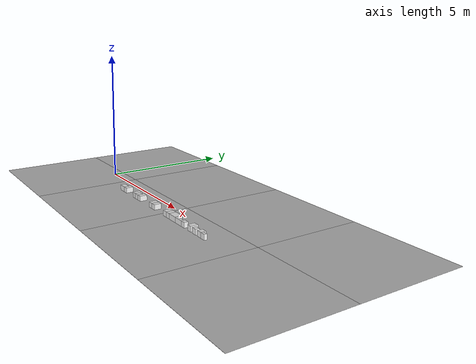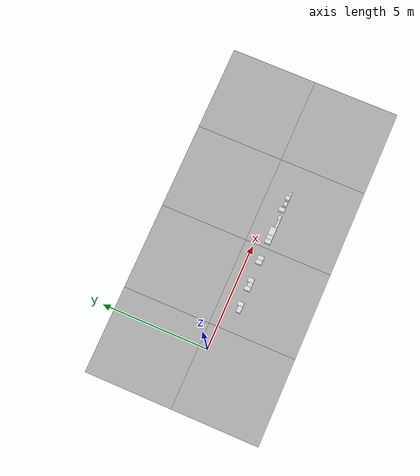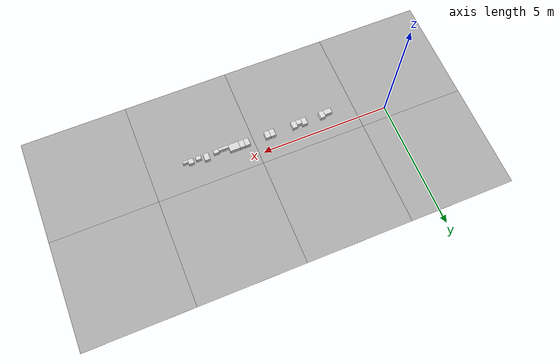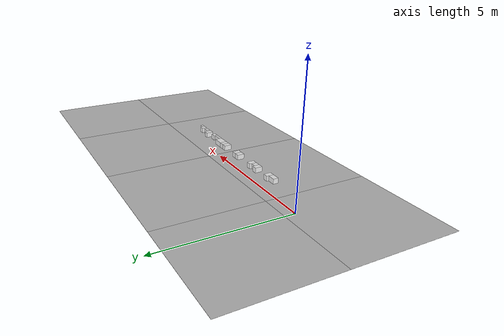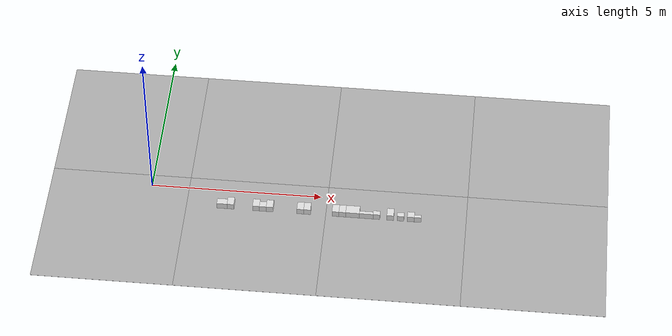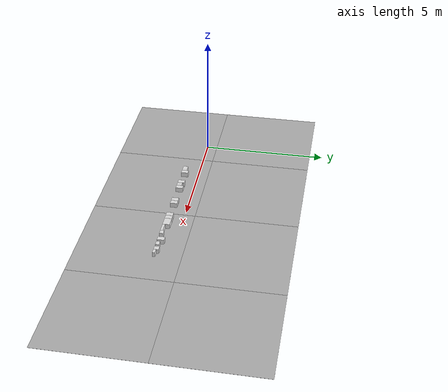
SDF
<sdf version='1.6'><world name='default'>
    <light name='sun_light' type='directional'>
      <pose frame=''>0 0 10 0 -0 0</pose>
      <diffuse>0.5 0.5 0.5 1</diffuse>
      <specular>0.1 0.1 0.1 1</specular>
      <direction>0.1 0.1 -0.9</direction>
      <attenuation>
        <range>20</range>
        <constant>0.5</constant>
        <linear>0.01</linear>
        <quadratic>0.001</quadratic>
      </attenuation>
      <cast_shadows>1</cast_shadows>
    </light>

    <model name='Tile/0-0'>
      <static>1</static>
      <link name='link'>
        <collision name='collision'>
          <geometry>
            <plane>
              <normal>0 0 1</normal>
              <size>4.096 4.096</size>
            </plane>
          </geometry>
          <surface>
            <friction>
              <ode>
                <mu>100</mu>
                <mu2>50</mu2>
              </ode>
              <torsional>
                <ode/>
              </torsional>
            </friction>
            <contact>
              <ode/>
            </contact>
            <bounce/>
          </surface>
          <max_contacts>10</max_contacts>
        </collision>
        <visual name='visual'>
          <cast_shadows>0</cast_shadows>
          <geometry>
            <plane>
              <normal>0 0 1</normal>
              <size>4.096 4.096</size>
            </plane>
          </geometry>
          <material>
            <script>
              <uri>file://materials/scripts</uri>
              <uri>file://materials/textures</uri>
              <name>Tile/aa44efc093d15b0d016b671cb8dad8b9b5925cd42bc6b331ef31decf4ba6863e</name>
            </script>
          </material>
        </visual>
        <self_collide>0</self_collide>
        <enable_wind>0</enable_wind>
        <kinematic>0</kinematic>
      </link>
      <pose frame=''>-0.952 -1.6520000000000001 0 0 -0 0</pose>
    </model>

    <model name='Tile/0-1'>
      <static>1</static>
      <link name='link'>
        <collision name='collision'>
          <geometry>
            <plane>
              <normal>0 0 1</normal>
              <size>4.096 4.096</size>
            </plane>
          </geometry>
          <surface>
            <friction>
              <ode>
                <mu>100</mu>
                <mu2>50</mu2>
              </ode>
              <torsional>
                <ode/>
              </torsional>
            </friction>
            <contact>
              <ode/>
            </contact>
            <bounce/>
          </surface>
          <max_contacts>10</max_contacts>
        </collision>
        <visual name='visual'>
          <cast_shadows>0</cast_shadows>
          <geometry>
            <plane>
              <normal>0 0 1</normal>
              <size>4.096 4.096</size>
            </plane>
          </geometry>
          <material>
            <script>
              <uri>file://materials/scripts</uri>
              <uri>file://materials/textures</uri>
              <name>Tile/6681b896b1587d54cb69aadeb5fb7247b4d6d500490292053e67105ac88ca889</name>
            </script>
          </material>
        </visual>
        <self_collide>0</self_collide>
        <enable_wind>0</enable_wind>
        <kinematic>0</kinematic>
      </link>
      <pose frame=''>-0.952 2.444 0 0 -0 0</pose>
    </model>

    <model name='Tile/1-0'>
      <static>1</static>
      <link name='link'>
        <collision name='collision'>
          <geometry>
            <plane>
              <normal>0 0 1</normal>
              <size>4.096 4.096</size>
            </plane>
          </geometry>
          <surface>
            <friction>
              <ode>
                <mu>100</mu>
                <mu2>50</mu2>
              </ode>
              <torsional>
                <ode/>
              </torsional>
            </friction>
            <contact>
              <ode/>
            </contact>
            <bounce/>
          </surface>
          <max_contacts>10</max_contacts>
        </collision>
        <visual name='visual'>
          <cast_shadows>0</cast_shadows>
          <geometry>
            <plane>
              <normal>0 0 1</normal>
              <size>4.096 4.096</size>
            </plane>
          </geometry>
          <material>
            <script>
              <uri>file://materials/scripts</uri>
              <uri>file://materials/textures</uri>
              <name>Tile/b68d0ecf6b408e0fc433244201ac7bd13b8bb7c908afa160fe7f06998fc3795e</name>
            </script>
          </material>
        </visual>
        <self_collide>0</self_collide>
        <enable_wind>0</enable_wind>
        <kinematic>0</kinematic>
      </link>
      <pose frame=''>3.144 -1.6520000000000001 0 0 -0 0</pose>
    </model>

    <model name='Tile/1-1'>
      <static>1</static>
      <link name='link'>
        <collision name='collision'>
          <geometry>
            <plane>
              <normal>0 0 1</normal>
              <size>4.096 4.096</size>
            </plane>
          </geometry>
          <surface>
            <friction>
              <ode>
                <mu>100</mu>
                <mu2>50</mu2>
              </ode>
              <torsional>
                <ode/>
              </torsional>
            </friction>
            <contact>
              <ode/>
            </contact>
            <bounce/>
          </surface>
          <max_contacts>10</max_contacts>
        </collision>
        <visual name='visual'>
          <cast_shadows>0</cast_shadows>
          <geometry>
            <plane>
              <normal>0 0 1</normal>
              <size>4.096 4.096</size>
            </plane>
          </geometry>
          <material>
            <script>
              <uri>file://materials/scripts</uri>
              <uri>file://materials/textures</uri>
              <name>Tile/13957a6de1f2afce18d7f1f64dacc2f21295e26ccf498256b0e1a51002cd5706</name>
            </script>
          </material>
        </visual>
        <self_collide>0</self_collide>
        <enable_wind>0</enable_wind>
        <kinematic>0</kinematic>
      </link>
      <pose frame=''>3.144 2.444 0 0 -0 0</pose>
    </model>

    <model name='Tile/2-0'>
      <static>1</static>
      <link name='link'>
        <collision name='collision'>
          <geometry>
            <plane>
              <normal>0 0 1</normal>
              <size>4.096 4.096</size>
            </plane>
          </geometry>
          <surface>
            <friction>
              <ode>
                <mu>100</mu>
                <mu2>50</mu2>
              </ode>
              <torsional>
                <ode/>
              </torsional>
            </friction>
            <contact>
              <ode/>
            </contact>
            <bounce/>
          </surface>
          <max_contacts>10</max_contacts>
        </collision>
        <visual name='visual'>
          <cast_shadows>0</cast_shadows>
          <geometry>
            <plane>
              <normal>0 0 1</normal>
              <size>4.096 4.096</size>
            </plane>
          </geometry>
          <material>
            <script>
              <uri>file://materials/scripts</uri>
              <uri>file://materials/textures</uri>
              <name>Tile/0a1ce1d769c28da96ebf4f035fce8fc54b9aefae1875079e0e4ee575628a1ae4</name>
            </script>
          </material>
        </visual>
        <self_collide>0</self_collide>
        <enable_wind>0</enable_wind>
        <kinematic>0</kinematic>
      </link>
      <pose frame=''>7.24 -1.6520000000000001 0 0 -0 0</pose>
    </model>

    <model name='Tile/2-1'>
      <static>1</static>
      <link name='link'>
        <collision name='collision'>
          <geometry>
            <plane>
              <normal>0 0 1</normal>
              <size>4.096 4.096</size>
            </plane>
          </geometry>
          <surface>
            <friction>
              <ode>
                <mu>100</mu>
                <mu2>50</mu2>
              </ode>
              <torsional>
                <ode/>
              </torsional>
            </friction>
            <contact>
              <ode/>
            </contact>
            <bounce/>
          </surface>
          <max_contacts>10</max_contacts>
        </collision>
        <visual name='visual'>
          <cast_shadows>0</cast_shadows>
          <geometry>
            <plane>
              <normal>0 0 1</normal>
              <size>4.096 4.096</size>
            </plane>
          </geometry>
          <material>
            <script>
              <uri>file://materials/scripts</uri>
              <uri>file://materials/textures</uri>
              <name>Tile/13957a6de1f2afce18d7f1f64dacc2f21295e26ccf498256b0e1a51002cd5706</name>
            </script>
          </material>
        </visual>
        <self_collide>0</self_collide>
        <enable_wind>0</enable_wind>
        <kinematic>0</kinematic>
      </link>
      <pose frame=''>7.24 2.444 0 0 -0 0</pose>
    </model>

    <model name='Tile/3-0'>
      <static>1</static>
      <link name='link'>
        <collision name='collision'>
          <geometry>
            <plane>
              <normal>0 0 1</normal>
              <size>4.096 4.096</size>
            </plane>
          </geometry>
          <surface>
            <friction>
              <ode>
                <mu>100</mu>
                <mu2>50</mu2>
              </ode>
              <torsional>
                <ode/>
              </torsional>
            </friction>
            <contact>
              <ode/>
            </contact>
            <bounce/>
          </surface>
          <max_contacts>10</max_contacts>
        </collision>
        <visual name='visual'>
          <cast_shadows>0</cast_shadows>
          <geometry>
            <plane>
              <normal>0 0 1</normal>
              <size>4.096 4.096</size>
            </plane>
          </geometry>
          <material>
            <script>
              <uri>file://materials/scripts</uri>
              <uri>file://materials/textures</uri>
              <name>Tile/6f6040bef4d42f9d15bfe1cac2798321f0b066d3c6650b2501bf7cefd4cde4eb</name>
            </script>
          </material>
        </visual>
        <self_collide>0</self_collide>
        <enable_wind>0</enable_wind>
        <kinematic>0</kinematic>
      </link>
      <pose frame=''>11.336 -1.6520000000000001 0 0 -0 0</pose>
    </model>

    <model name='Tile/3-1'>
      <static>1</static>
      <link name='link'>
        <collision name='collision'>
          <geometry>
            <plane>
              <normal>0 0 1</normal>
              <size>4.096 4.096</size>
            </plane>
          </geometry>
          <surface>
            <friction>
              <ode>
                <mu>100</mu>
                <mu2>50</mu2>
              </ode>
              <torsional>
                <ode/>
              </torsional>
            </friction>
            <contact>
              <ode/>
            </contact>
            <bounce/>
          </surface>
          <max_contacts>10</max_contacts>
        </collision>
        <visual name='visual'>
          <cast_shadows>0</cast_shadows>
          <geometry>
            <plane>
              <normal>0 0 1</normal>
              <size>4.096 4.096</size>
            </plane>
          </geometry>
          <material>
            <script>
              <uri>file://materials/scripts</uri>
              <uri>file://materials/textures</uri>
              <name>Tile/645e4de11e43fb4a2eacb9a8c7d717bcfff32a13dfbd190f93559dca6052abb8</name>
            </script>
          </material>
        </visual>
        <self_collide>0</self_collide>
        <enable_wind>0</enable_wind>
        <kinematic>0</kinematic>
      </link>
      <pose frame=''>11.336 2.444 0 0 -0 0</pose>
    </model>

    <model name='Obstacle/-5/0'>
      <pose frame=''>2.15 -0.6 0.1 0 0 -0.0</pose>
      <link name='link'>
        <inertial>
          <mass>10</mass>
          <inertia>
            <ixx>0.166667</ixx>
            <ixy>0</ixy>
            <ixz>0</ixz>
            <iyy>0.166667</iyy>
            <iyz>0</iyz>
            <izz>0.166667</izz>
          </inertia>
        </inertial>
        <collision name='collision'>
          <geometry>
            <box>
              <size>0.3 0.2 0.2</size>
            </box>
          </geometry>
          <max_contacts>10</max_contacts>
          <surface>
            <contact>
              <ode/>
            </contact>
            <bounce/>
            <friction>
              <torsional>
                <ode/>
              </torsional>
              <ode/>
            </friction>
          </surface>
        </collision>
        <visual name='visual'>
          <geometry>
            <box>
              <size>0.3 0.2 0.2</size>
            </box>
          </geometry>
          <material>
            <script>
              <name>Gazebo/White</name>
              <uri>file://media/materials/scripts/gazebo.material</uri>
            </script>
          </material>
        </visual>
        <self_collide>0</self_collide>
        <enable_wind>0</enable_wind>
        <kinematic>0</kinematic>
      </link>
    </model>

    <model name='Obstacle/-9/0'>
      <pose frame=''>2.4 -0.5599999999999999 0.1 0 0 -0.0</pose>
      <link name='link'>
        <inertial>
          <mass>10</mass>
          <inertia>
            <ixx>0.166667</ixx>
            <ixy>0</ixy>
            <ixz>0</ixz>
            <iyy>0.166667</iyy>
            <iyz>0</iyz>
            <izz>0.166667</izz>
          </inertia>
        </inertial>
        <collision name='collision'>
          <geometry>
            <box>
              <size>0.2 0.28 0.2</size>
            </box>
          </geometry>
          <max_contacts>10</max_contacts>
          <surface>
            <contact>
              <ode/>
            </contact>
            <bounce/>
            <friction>
              <torsional>
                <ode/>
              </torsional>
              <ode/>
            </friction>
          </surface>
        </collision>
        <visual name='visual'>
          <geometry>
            <box>
              <size>0.2 0.28 0.2</size>
            </box>
          </geometry>
          <material>
            <script>
              <name>Gazebo/White</name>
              <uri>file://media/materials/scripts/gazebo.material</uri>
            </script>
          </material>
        </visual>
        <self_collide>0</self_collide>
        <enable_wind>0</enable_wind>
        <kinematic>0</kinematic>
      </link>
    </model>

    <model name='Obstacle/-16/0'>
      <pose frame=''>3.15 -0.5599999999999999 0.1 0 0 -0.0</pose>
      <link name='link'>
        <inertial>
          <mass>10</mass>
          <inertia>
            <ixx>0.166667</ixx>
            <ixy>0</ixy>
            <ixz>0</ixz>
            <iyy>0.166667</iyy>
            <iyz>0</iyz>
            <izz>0.166667</izz>
          </inertia>
        </inertial>
        <collision name='collision'>
          <geometry>
            <box>
              <size>0.2 0.28 0.2</size>
            </box>
          </geometry>
          <max_contacts>10</max_contacts>
          <surface>
            <contact>
              <ode/>
            </contact>
            <bounce/>
            <friction>
              <torsional>
                <ode/>
              </torsional>
              <ode/>
            </friction>
          </surface>
        </collision>
        <visual name='visual'>
          <geometry>
            <box>
              <size>0.2 0.28 0.2</size>
            </box>
          </geometry>
          <material>
            <script>
              <name>Gazebo/White</name>
              <uri>file://media/materials/scripts/gazebo.material</uri>
            </script>
          </material>
        </visual>
        <self_collide>0</self_collide>
        <enable_wind>0</enable_wind>
        <kinematic>0</kinematic>
      </link>
    </model>

    <model name='Obstacle/-20/0'>
      <pose frame=''>3.35 -0.6 0.1 0 0 -0.0</pose>
      <link name='link'>
        <inertial>
          <mass>10</mass>
          <inertia>
            <ixx>0.166667</ixx>
            <ixy>0</ixy>
            <ixz>0</ixz>
            <iyy>0.166667</iyy>
            <iyz>0</iyz>
            <izz>0.166667</izz>
          </inertia>
        </inertial>
        <collision name='collision'>
          <geometry>
            <box>
              <size>0.2 0.2 0.2</size>
            </box>
          </geometry>
          <max_contacts>10</max_contacts>
          <surface>
            <contact>
              <ode/>
            </contact>
            <bounce/>
            <friction>
              <torsional>
                <ode/>
              </torsional>
              <ode/>
            </friction>
          </surface>
        </collision>
        <visual name='visual'>
          <geometry>
            <box>
              <size>0.2 0.2 0.2</size>
            </box>
          </geometry>
          <material>
            <script>
              <name>Gazebo/White</name>
              <uri>file://media/materials/scripts/gazebo.material</uri>
            </script>
          </material>
        </visual>
        <self_collide>0</self_collide>
        <enable_wind>0</enable_wind>
        <kinematic>0</kinematic>
      </link>
    </model>

    <model name='Obstacle/-24/0'>
      <pose frame=''>3.5500000000000003 -0.5599999999999999 0.1 0 0 -0.0</pose>
      <link name='link'>
        <inertial>
          <mass>10</mass>
          <inertia>
            <ixx>0.166667</ixx>
            <ixy>0</ixy>
            <ixz>0</ixz>
            <iyy>0.166667</iyy>
            <iyz>0</iyz>
            <izz>0.166667</izz>
          </inertia>
        </inertial>
        <collision name='collision'>
          <geometry>
            <box>
              <size>0.2 0.28 0.2</size>
            </box>
          </geometry>
          <max_contacts>10</max_contacts>
          <surface>
            <contact>
              <ode/>
            </contact>
            <bounce/>
            <friction>
              <torsional>
                <ode/>
              </torsional>
              <ode/>
            </friction>
          </surface>
        </collision>
        <visual name='visual'>
          <geometry>
            <box>
              <size>0.2 0.28 0.2</size>
            </box>
          </geometry>
          <material>
            <script>
              <name>Gazebo/White</name>
              <uri>file://media/materials/scripts/gazebo.material</uri>
            </script>
          </material>
        </visual>
        <self_collide>0</self_collide>
        <enable_wind>0</enable_wind>
        <kinematic>0</kinematic>
      </link>
    </model>

    <model name='Obstacle/-31/0'>
      <pose frame=''>4.45 -0.5599999999999999 0.1 0 0 -0.0</pose>
      <link name='link'>
        <inertial>
          <mass>10</mass>
          <inertia>
            <ixx>0.166667</ixx>
            <ixy>0</ixy>
            <ixz>0</ixz>
            <iyy>0.166667</iyy>
            <iyz>0</iyz>
            <izz>0.166667</izz>
          </inertia>
        </inertial>
        <collision name='collision'>
          <geometry>
            <box>
              <size>0.2 0.28 0.2</size>
            </box>
          </geometry>
          <max_contacts>10</max_contacts>
          <surface>
            <contact>
              <ode/>
            </contact>
            <bounce/>
            <friction>
              <torsional>
                <ode/>
              </torsional>
              <ode/>
            </friction>
          </surface>
        </collision>
        <visual name='visual'>
          <geometry>
            <box>
              <size>0.2 0.28 0.2</size>
            </box>
          </geometry>
          <material>
            <script>
              <name>Gazebo/White</name>
              <uri>file://media/materials/scripts/gazebo.material</uri>
            </script>
          </material>
        </visual>
        <self_collide>0</self_collide>
        <enable_wind>0</enable_wind>
        <kinematic>0</kinematic>
      </link>
    </model>

    <model name='Obstacle/-35/0'>
      <pose frame=''>4.65 -0.5599999999999999 0.1 0 0 -0.0</pose>
      <link name='link'>
        <inertial>
          <mass>10</mass>
          <inertia>
            <ixx>0.166667</ixx>
            <ixy>0</ixy>
            <ixz>0</ixz>
            <iyy>0.166667</iyy>
            <iyz>0</iyz>
            <izz>0.166667</izz>
          </inertia>
        </inertial>
        <collision name='collision'>
          <geometry>
            <box>
              <size>0.2 0.28 0.2</size>
            </box>
          </geometry>
          <max_contacts>10</max_contacts>
          <surface>
            <contact>
              <ode/>
            </contact>
            <bounce/>
            <friction>
              <torsional>
                <ode/>
              </torsional>
              <ode/>
            </friction>
          </surface>
        </collision>
        <visual name='visual'>
          <geometry>
            <box>
              <size>0.2 0.28 0.2</size>
            </box>
          </geometry>
          <material>
            <script>
              <name>Gazebo/White</name>
              <uri>file://media/materials/scripts/gazebo.material</uri>
            </script>
          </material>
        </visual>
        <self_collide>0</self_collide>
        <enable_wind>0</enable_wind>
        <kinematic>0</kinematic>
      </link>
    </model>

    <model name='Obstacle/-42/0'>
      <pose frame=''>5.48 -0.5599999999999999 0.1 0 0 -0.0</pose>
      <link name='link'>
        <inertial>
          <mass>10</mass>
          <inertia>
            <ixx>0.166667</ixx>
            <ixy>0</ixy>
            <ixz>0</ixz>
            <iyy>0.166667</iyy>
            <iyz>0</iyz>
            <izz>0.166667</izz>
          </inertia>
        </inertial>
        <collision name='collision'>
          <geometry>
            <box>
              <size>0.2 0.28 0.2</size>
            </box>
          </geometry>
          <max_contacts>10</max_contacts>
          <surface>
            <contact>
              <ode/>
            </contact>
            <bounce/>
            <friction>
              <torsional>
                <ode/>
              </torsional>
              <ode/>
            </friction>
          </surface>
        </collision>
        <visual name='visual'>
          <geometry>
            <box>
              <size>0.2 0.28 0.2</size>
            </box>
          </geometry>
          <material>
            <script>
              <name>Gazebo/White</name>
              <uri>file://media/materials/scripts/gazebo.material</uri>
            </script>
          </material>
        </visual>
        <self_collide>0</self_collide>
        <enable_wind>0</enable_wind>
        <kinematic>0</kinematic>
      </link>
    </model>

    <model name='Obstacle/-46/0'>
      <pose frame=''>5.680000000000001 -0.5599999999999999 0.1 0 0 -0.0</pose>
      <link name='link'>
        <inertial>
          <mass>10</mass>
          <inertia>
            <ixx>0.166667</ixx>
            <ixy>0</ixy>
            <ixz>0</ixz>
            <iyy>0.166667</iyy>
            <iyz>0</iyz>
            <izz>0.166667</izz>
          </inertia>
        </inertial>
        <collision name='collision'>
          <geometry>
            <box>
              <size>0.2 0.28 0.2</size>
            </box>
          </geometry>
          <max_contacts>10</max_contacts>
          <surface>
            <contact>
              <ode/>
            </contact>
            <bounce/>
            <friction>
              <torsional>
                <ode/>
              </torsional>
              <ode/>
            </friction>
          </surface>
        </collision>
        <visual name='visual'>
          <geometry>
            <box>
              <size>0.2 0.28 0.2</size>
            </box>
          </geometry>
          <material>
            <script>
              <name>Gazebo/White</name>
              <uri>file://media/materials/scripts/gazebo.material</uri>
            </script>
          </material>
        </visual>
        <self_collide>0</self_collide>
        <enable_wind>0</enable_wind>
        <kinematic>0</kinematic>
      </link>
    </model>

    <model name='Obstacle/-50/0'>
      <pose frame=''>5.980000000000001 -0.5599999999999999 0.1 0 0 -0.0</pose>
      <link name='link'>
        <inertial>
          <mass>10</mass>
          <inertia>
            <ixx>0.166667</ixx>
            <ixy>0</ixy>
            <ixz>0</ixz>
            <iyy>0.166667</iyy>
            <iyz>0</iyz>
            <izz>0.166667</izz>
          </inertia>
        </inertial>
        <collision name='collision'>
          <geometry>
            <box>
              <size>0.4 0.28 0.2</size>
            </box>
          </geometry>
          <max_contacts>10</max_contacts>
          <surface>
            <contact>
              <ode/>
            </contact>
            <bounce/>
            <friction>
              <torsional>
                <ode/>
              </torsional>
              <ode/>
            </friction>
          </surface>
        </collision>
        <visual name='visual'>
          <geometry>
            <box>
              <size>0.4 0.28 0.2</size>
            </box>
          </geometry>
          <material>
            <script>
              <name>Gazebo/White</name>
              <uri>file://media/materials/scripts/gazebo.material</uri>
            </script>
          </material>
        </visual>
        <self_collide>0</self_collide>
        <enable_wind>0</enable_wind>
        <kinematic>0</kinematic>
      </link>
    </model>

    <model name='Obstacle/-54/0'>
      <pose frame=''>6.380000000000002 -0.6499999999999999 0.1 0 0 -0.0</pose>
      <link name='link'>
        <inertial>
          <mass>10</mass>
          <inertia>
            <ixx>0.166667</ixx>
            <ixy>0</ixy>
            <ixz>0</ixz>
            <iyy>0.166667</iyy>
            <iyz>0</iyz>
            <izz>0.166667</izz>
          </inertia>
        </inertial>
        <collision name='collision'>
          <geometry>
            <box>
              <size>0.4 0.1 0.2</size>
            </box>
          </geometry>
          <max_contacts>10</max_contacts>
          <surface>
            <contact>
              <ode/>
            </contact>
            <bounce/>
            <friction>
              <torsional>
                <ode/>
              </torsional>
              <ode/>
            </friction>
          </surface>
        </collision>
        <visual name='visual'>
          <geometry>
            <box>
              <size>0.4 0.1 0.2</size>
            </box>
          </geometry>
          <material>
            <script>
              <name>Gazebo/White</name>
              <uri>file://media/materials/scripts/gazebo.material</uri>
            </script>
          </material>
        </visual>
        <self_collide>0</self_collide>
        <enable_wind>0</enable_wind>
        <kinematic>0</kinematic>
      </link>
    </model>

    <model name='Obstacle/-58/0'>
      <pose frame=''>6.6800000000000015 -0.625 0.1 0 0 -0.0</pose>
      <link name='link'>
        <inertial>
          <mass>10</mass>
          <inertia>
            <ixx>0.166667</ixx>
            <ixy>0</ixy>
            <ixz>0</ixz>
            <iyy>0.166667</iyy>
            <iyz>0</iyz>
            <izz>0.166667</izz>
          </inertia>
        </inertial>
        <collision name='collision'>
          <geometry>
            <box>
              <size>0.2 0.15 0.2</size>
            </box>
          </geometry>
          <max_contacts>10</max_contacts>
          <surface>
            <contact>
              <ode/>
            </contact>
            <bounce/>
            <friction>
              <torsional>
                <ode/>
              </torsional>
              <ode/>
            </friction>
          </surface>
        </collision>
        <visual name='visual'>
          <geometry>
            <box>
              <size>0.2 0.15 0.2</size>
            </box>
          </geometry>
          <material>
            <script>
              <name>Gazebo/White</name>
              <uri>file://media/materials/scripts/gazebo.material</uri>
            </script>
          </material>
        </visual>
        <self_collide>0</self_collide>
        <enable_wind>0</enable_wind>
        <kinematic>0</kinematic>
      </link>
    </model>

    <model name='Obstacle/-65/0'>
      <pose frame=''>7.080000000000002 -0.5599999999999999 0.1 0 0 -0.0</pose>
      <link name='link'>
        <inertial>
          <mass>10</mass>
          <inertia>
            <ixx>0.166667</ixx>
            <ixy>0</ixy>
            <ixz>0</ixz>
            <iyy>0.166667</iyy>
            <iyz>0</iyz>
            <izz>0.166667</izz>
          </inertia>
        </inertial>
        <collision name='collision'>
          <geometry>
            <box>
              <size>0.2 0.28 0.2</size>
            </box>
          </geometry>
          <max_contacts>10</max_contacts>
          <surface>
            <contact>
              <ode/>
            </contact>
            <bounce/>
            <friction>
              <torsional>
                <ode/>
              </torsional>
              <ode/>
            </friction>
          </surface>
        </collision>
        <visual name='visual'>
          <geometry>
            <box>
              <size>0.2 0.28 0.2</size>
            </box>
          </geometry>
          <material>
            <script>
              <name>Gazebo/White</name>
              <uri>file://media/materials/scripts/gazebo.material</uri>
            </script>
          </material>
        </visual>
        <self_collide>0</self_collide>
        <enable_wind>0</enable_wind>
        <kinematic>0</kinematic>
      </link>
    </model>

    <model name='Obstacle/-72/0'>
      <pose frame=''>7.380000000000002 -0.625 0.1 0 0 -0.0</pose>
      <link name='link'>
        <inertial>
          <mass>10</mass>
          <inertia>
            <ixx>0.166667</ixx>
            <ixy>0</ixy>
            <ixz>0</ixz>
            <iyy>0.166667</iyy>
            <iyz>0</iyz>
            <izz>0.166667</izz>
          </inertia>
        </inertial>
        <collision name='collision'>
          <geometry>
            <box>
              <size>0.2 0.15 0.2</size>
            </box>
          </geometry>
          <max_contacts>10</max_contacts>
          <surface>
            <contact>
              <ode/>
            </contact>
            <bounce/>
            <friction>
              <torsional>
                <ode/>
              </torsional>
              <ode/>
            </friction>
          </surface>
        </collision>
        <visual name='visual'>
          <geometry>
            <box>
              <size>0.2 0.15 0.2</size>
            </box>
          </geometry>
          <material>
            <script>
              <name>Gazebo/White</name>
              <uri>file://media/materials/scripts/gazebo.material</uri>
            </script>
          </material>
        </visual>
        <self_collide>0</self_collide>
        <enable_wind>0</enable_wind>
        <kinematic>0</kinematic>
      </link>
    </model>

    <model name='Obstacle/-79/0'>
      <pose frame=''>7.6800000000000015 -0.6 0.1 0 0 -0.0</pose>
      <link name='link'>
        <inertial>
          <mass>10</mass>
          <inertia>
            <ixx>0.166667</ixx>
            <ixy>0</ixy>
            <ixz>0</ixz>
            <iyy>0.166667</iyy>
            <iyz>0</iyz>
            <izz>0.166667</izz>
          </inertia>
        </inertial>
        <collision name='collision'>
          <geometry>
            <box>
              <size>0.2 0.2 0.2</size>
            </box>
          </geometry>
          <max_contacts>10</max_contacts>
          <surface>
            <contact>
              <ode/>
            </contact>
            <bounce/>
            <friction>
              <torsional>
                <ode/>
              </torsional>
              <ode/>
            </friction>
          </surface>
        </collision>
        <visual name='visual'>
          <geometry>
            <box>
              <size>0.2 0.2 0.2</size>
            </box>
          </geometry>
          <material>
            <script>
              <name>Gazebo/White</name>
              <uri>file://media/materials/scripts/gazebo.material</uri>
            </script>
          </material>
        </visual>
        <self_collide>0</self_collide>
        <enable_wind>0</enable_wind>
        <kinematic>0</kinematic>
      </link>
    </model>

    <model name='Obstacle/-83/0'>
      <pose frame=''>7.880000000000002 -0.6499999999999999 0.1 0 0 -0.0</pose>
      <link name='link'>
        <inertial>
          <mass>10</mass>
          <inertia>
            <ixx>0.166667</ixx>
            <ixy>0</ixy>
            <ixz>0</ixz>
            <iyy>0.166667</iyy>
            <iyz>0</iyz>
            <izz>0.166667</izz>
          </inertia>
        </inertial>
        <collision name='collision'>
          <geometry>
            <box>
              <size>0.2 0.1 0.2</size>
            </box>
          </geometry>
          <max_contacts>10</max_contacts>
          <surface>
            <contact>
              <ode/>
            </contact>
            <bounce/>
            <friction>
              <torsional>
                <ode/>
              </torsional>
              <ode/>
            </friction>
          </surface>
        </collision>
        <visual name='visual'>
          <geometry>
            <box>
              <size>0.2 0.1 0.2</size>
            </box>
          </geometry>
          <material>
            <script>
              <name>Gazebo/White</name>
              <uri>file://media/materials/scripts/gazebo.material</uri>
            </script>
          </material>
        </visual>
        <self_collide>0</self_collide>
        <enable_wind>0</enable_wind>
        <kinematic>0</kinematic>
      </link>
    </model>
    </world></sdf>
